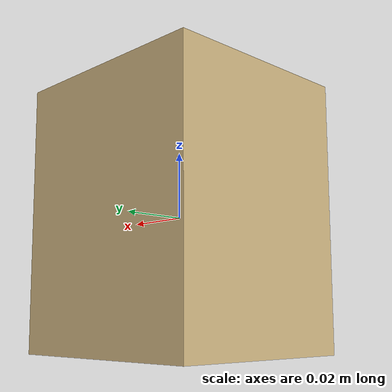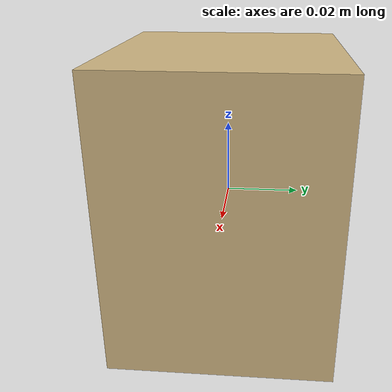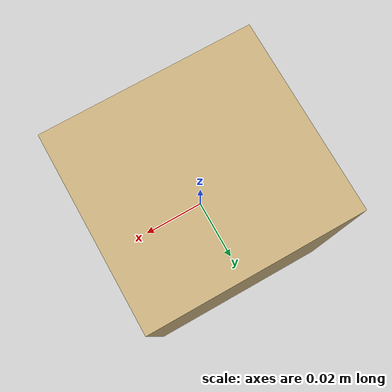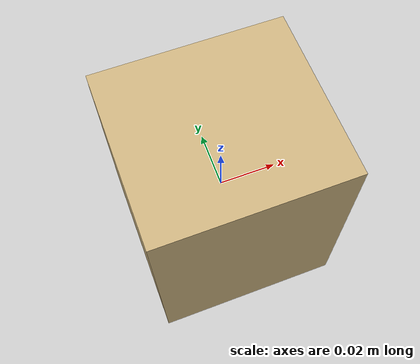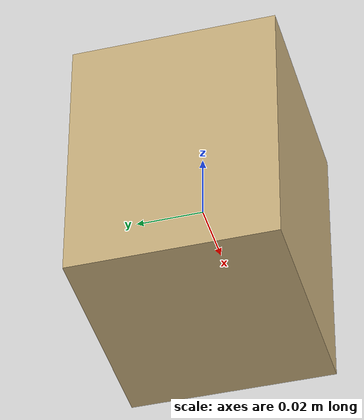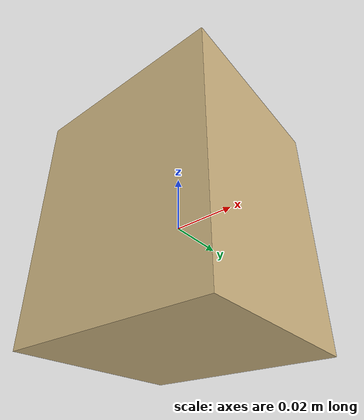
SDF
<?xml version="1.0" ?>
<sdf version="1.5">
  <model name="cardboard_box">
    <link name="link">
      <inertial>
        <mass>0.200</mass>
        <!-- box: 0.066x0.061x0.081m — Ixx=m/12*(y²+z²) etc -->
        <inertia>
          <ixx>0.0001714</ixx><ixy>0</ixy><ixz>0</ixz>
          <iyy>0.0001819</iyy><iyz>0</iyz><izz>0.0001346</izz>
        </inertia>
      </inertial>
      <collision name="collision">
        <geometry><box><size>0.066 0.061 0.081</size></box></geometry>
              <surface>
          <friction>
            <ode>
              <mu>0.5</mu>
              <mu2>0.5</mu2>
            </ode>
            <torsional>
              <coefficient>0.5</coefficient>
              <surface_radius>0.01</surface_radius>
            </torsional>
          </friction>
          <contact>
            <ode>
              <kp>1e6</kp>
              <kd>50</kd>
              <min_depth>0.001</min_depth>
              <max_vel>0.01</max_vel>
            </ode>
          </contact>
        </surface>
      </collision>
      <visual name="visual">
        <geometry><box><size>0.066 0.061 0.081</size></box></geometry>
        <material>
          <ambient>0.8 0.7 0.5 1</ambient><diffuse>0.8 0.7 0.5 1</diffuse>
        </material>
      </visual>
    </link>
  </model>
</sdf>
